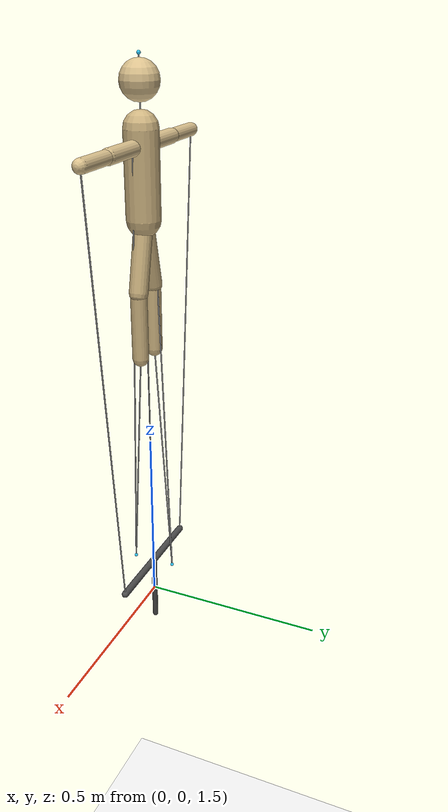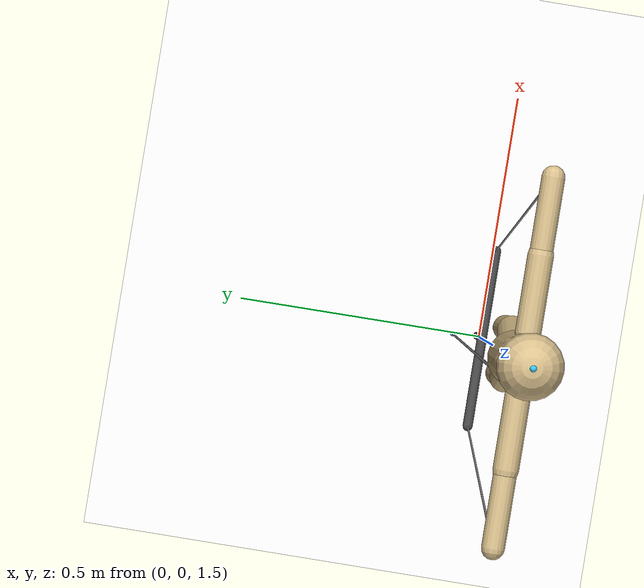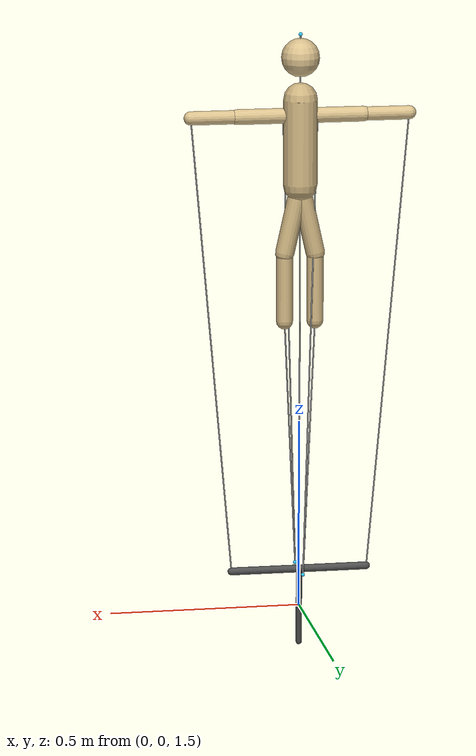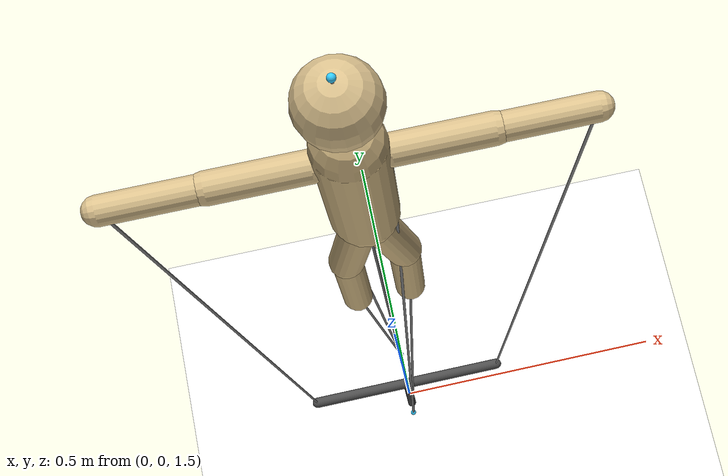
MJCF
<?xml version="1.0" encoding="utf-8"?>
<mujoco model="marionette">
  <compiler angle="degree" coordinate="local">
    <!-- Disable automatic actuator length-range computation (can fail in WASM) -->
    <lengthrange mode="none"/>
  </compiler>
  <option timestep="0.002" gravity="0 0 -9.81" solver="Newton" iterations="50"/>
  <size njmax="500" nconmax="200"/>
  <default>
    <geom friction="0.8 0.1 0.1" density="400" rgba="0.8 0.7 0.5 1"/>
    <joint damping="1" armature="0.01"/>
    <site size="0.005" rgba="0.2 0.8 1 1"/>
  </default>

  <asset>
    <texture name="grid" type="2d" builtin="checker" width="256" height="256"
             rgb1="0.2 0.2 0.2" rgb2="0.3 0.3 0.3"/>
    <material name="gridmat" texture="grid" texrepeat="8 8" reflectance="0.0"/>
  </asset>

  <worldbody>
    <geom name="floor" type="plane" pos="0 0 0" size="5 5 0.1" material="gridmat" rgba="1 1 1 1"/>

    <!-- =========================
         HANDLE (crossbar + stem)
         ========================= -->
    <body name="handle" pos="0 0 1.6">
      <joint name="handle_free" type="free"/>

      <!-- crossbar -->
      <geom name="crossbar" type="capsule" fromto="-0.18 0 0   0.18 0 0" size="0.01" rgba="0.3 0.3 0.3 1"/>
      <!-- stem -->
      <geom name="stem" type="capsule" fromto="0 0 0   0 0 -0.20" size="0.008" rgba="0.25 0.25 0.25 1"/>

      <!-- handle string attachment sites -->
      <site name="h_left"  pos="-0.18  0.00 0.00"/>
      <site name="h_right" pos=" 0.18  0.00 0.00"/>
      <site name="h_front" pos=" 0.00  0.06 0.00"/>
      <site name="h_back"  pos=" 0.00 -0.06 0.00"/>
      <site name="h_center" pos="0 0 -0.20"/>

      <!-- =========================
           PUPPET BODY (hanging below)
           ========================= -->
      <body name="puppet" pos="0 0 1.15">
        <joint name="puppet_free" type="free"/>

        <!-- torso -->
        <body name="torso" pos="0 0 0">
          <geom name="torso" type="capsule" fromto="0 0 0.10   0 0 -0.12" size="0.045"/>
          <site name="p_chest" pos="0 0 0.05"/>
          <site name="p_hips"  pos="0 0 -0.10"/>

          <!-- head -->
          <body name="head" pos="0 0 0.16">
            <joint name="neck" type="ball" damping="0.5"/>
            <geom name="head_geom" type="sphere" size="0.05" pos="0 0 0.05" rgba="0.85 0.75 0.55 1"/>
            <site name="p_head_top" pos="0 0 0.11"/>
          </body>

          <!-- left arm - connected to torso at shoulder -->
          <body name="l_upperarm" pos="-0.045 0 0.06">
            <joint name="l_shoulder" type="ball" damping="0.8" pos="0 0 0"/>
            <geom name="l_upperarm_geom" type="capsule" fromto="0 0 0   -0.12 0 0" size="0.02" rgba="0.85 0.75 0.55 1"/>
            <site name="p_l_shoulder" pos="0 0 0"/>
            <body name="l_forearm" pos="-0.12 0 0">
              <joint name="l_elbow" type="hinge" axis="0 1 0" damping="0.4" range="-120 0"/>
              <geom name="l_forearm_geom" type="capsule" fromto="0 0 0   -0.12 0 0" size="0.018" rgba="0.85 0.75 0.55 1"/>
              <site name="p_l_hand" pos="-0.12 0 0"/>
            </body>
          </body>

          <!-- right arm - connected to torso at shoulder -->
          <body name="r_upperarm" pos="0.045 0 0.06">
            <joint name="r_shoulder" type="ball" damping="0.8" pos="0 0 0"/>
            <geom name="r_upperarm_geom" type="capsule" fromto="0 0 0   0.12 0 0" size="0.02" rgba="0.85 0.75 0.55 1"/>
            <site name="p_r_shoulder" pos="0 0 0"/>
            <body name="r_forearm" pos="0.12 0 0">
              <joint name="r_elbow" type="hinge" axis="0 1 0" damping="0.4" range="-120 0"/>
              <geom name="r_forearm_geom" type="capsule" fromto="0 0 0   0.12 0 0" size="0.018" rgba="0.85 0.75 0.55 1"/>
              <site name="p_r_hand" pos="0.12 0 0"/>
            </body>
          </body>
        </body>

        <!-- left leg -->
        <body name="l_thigh" pos="0 0 -0.12">
          <joint name="l_hip" type="ball" damping="1.0" pos="0 0 0"/>
          <geom name="l_thigh_geom" type="capsule" fromto="0 0 0   -0.04 0 -0.18" size="0.025"/>
          <body name="l_shin" pos="-0.04 0 -0.18">
            <joint name="l_knee" type="hinge" axis="1 0 0" damping="0.6" range="-5 130"/>
            <geom name="l_shin_geom" type="capsule" fromto="0 0 0   0 0 -0.18" size="0.022"/>
            <site name="p_l_foot" pos="0 0 -0.18"/>
          </body>
        </body>

        <!-- right leg -->
        <body name="r_thigh" pos="0 0 -0.12">
          <joint name="r_hip" type="ball" damping="1.0" pos="0 0 0"/>
          <geom name="r_thigh_geom" type="capsule" fromto="0 0 0   0.04 0 -0.18" size="0.025"/>
          <body name="r_shin" pos="0.04 0 -0.18">
            <joint name="r_knee" type="hinge" axis="1 0 0" damping="0.6" range="-5 130"/>
            <geom name="r_shin_geom" type="capsule" fromto="0 0 0   0 0 -0.18" size="0.022"/>
            <site name="p_r_foot" pos="0 0 -0.18"/>
          </body>
        </body>

      </body>
    </body>
  </worldbody>

  <tendon>
    <!-- head + torso -->
    <spatial name="t_head" width="0.002">
      <site site="h_center"/>
      <site site="p_head_top"/>
    </spatial>
    <spatial name="t_chest" width="0.002">
      <site site="h_center"/>
      <site site="p_chest"/>
    </spatial>

    <!-- hands -->
    <spatial name="t_l_hand" width="0.002">
      <site site="h_left"/>
      <site site="p_l_hand"/>
    </spatial>
    <spatial name="t_r_hand" width="0.002">
      <site site="h_right"/>
      <site site="p_r_hand"/>
    </spatial>

    <!-- shoulders (stabilize upper body) -->
    <spatial name="t_l_shoulder" width="0.002">
      <site site="h_front"/>
      <site site="p_l_shoulder"/>
    </spatial>
    <spatial name="t_r_shoulder" width="0.002">
      <site site="h_back"/>
      <site site="p_r_shoulder"/>
    </spatial>

    <!-- feet -->
    <spatial name="t_l_foot" width="0.002">
      <site site="h_front"/>
      <site site="p_l_foot"/>
    </spatial>
    <spatial name="t_r_foot" width="0.002">
      <site site="h_back"/>
      <site site="p_r_foot"/>
    </spatial>
  </tendon>

  <actuator>
    <!-- Position actuators drive tendon length; lengthrange required when compiler lengthrange mode=none. -->
    <position name="a_head"    tendon="t_head"    kp="200" gear="0.05" lengthrange="0.2 2.5"/>
    <position name="a_chest"   tendon="t_chest"   kp="200" gear="0.05" lengthrange="0.2 2.5"/>

    <position name="a_l_hand"  tendon="t_l_hand"  kp="200" gear="0.08" lengthrange="0.2 2.5"/>
    <position name="a_r_hand"  tendon="t_r_hand"  kp="200" gear="0.08" lengthrange="0.2 2.5"/>

    <position name="a_l_sh"    tendon="t_l_shoulder" kp="150" gear="0.06" lengthrange="0.2 2.5"/>
    <position name="a_r_sh"    tendon="t_r_shoulder" kp="150" gear="0.06" lengthrange="0.2 2.5"/>

    <position name="a_l_foot"  tendon="t_l_foot"  kp="250" gear="0.08" lengthrange="0.2 2.5"/>
    <position name="a_r_foot"  tendon="t_r_foot"  kp="250" gear="0.08" lengthrange="0.2 2.5"/>
  </actuator>
</mujoco>
